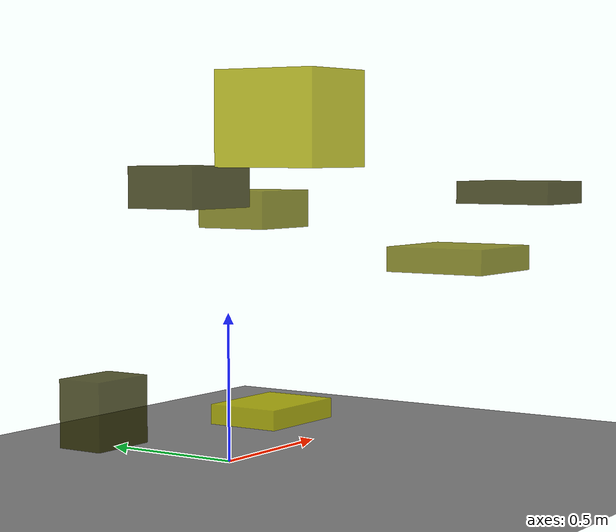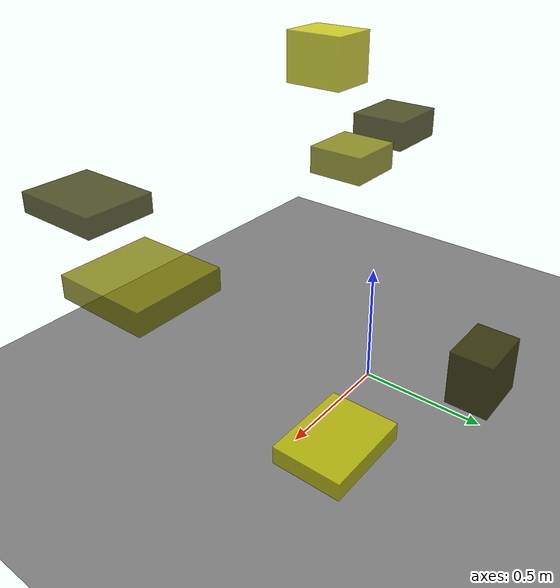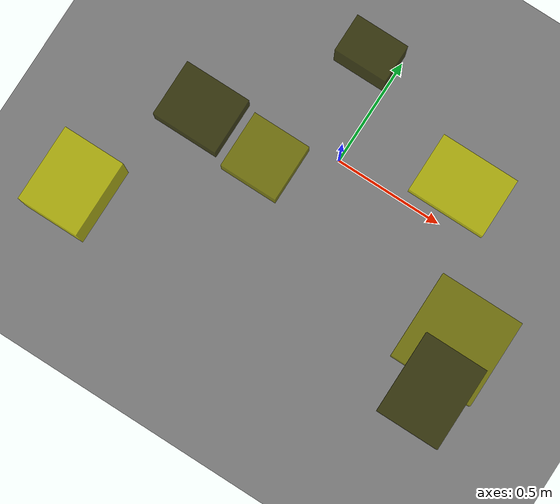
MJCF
<?xml version="1.0"?>
<mujoco model="obstacle_scene">
  <compiler angle="radian" coordinate="local"/>
  <option timestep="0.001" gravity="0 0 -9.81"/>

  <asset>
    <material name="obstacle_mat" rgba="0.8 0.8 0.0 0.8"/>
    <material name="ground_mat" rgba="0.5 0.5 0.5 1"/>
  </asset>

  <worldbody>
    <!-- Ground plane -->
    <geom name="ground" type="plane" size="3 3 0.1" material="ground_mat"/>

    <!-- Obstacles -->
    <body name="obstacle_0" pos="0.811686 -0.662944 0.894434">
      <geom name="obs_0" type="box" size="0.134972 0.175623 0.038602" rgba="0.2 0.2 0.0 0.8"/>
    </body>
    <body name="obstacle_1" pos="-0.202486 -0.253175 0.859090">
      <geom name="obs_1" type="box" size="0.123769 0.120901 0.057790" rgba="0.5 0.5 0.0 0.8"/>
    </body>
    <body name="obstacle_2" pos="0.501211 0.180703 0.089048">
      <geom name="obs_2" type="box" size="0.183703 0.139319 0.035799" rgba="0.8 0.8 0.0 0.8"/>
    </body>
    <body name="obstacle_3" pos="-0.501503 -0.234644 0.932301">
      <geom name="obs_3" type="box" size="0.139794 0.119388 0.062300" rgba="0.2 0.2 0.0 0.8"/>
    </body>
    <body name="obstacle_4" pos="0.797826 -0.430102 0.655211">
      <geom name="obs_4" type="box" size="0.182108 0.190171 0.044595" rgba="0.5 0.5 0.0 0.8"/>
    </body>
    <body name="obstacle_5" pos="-0.721300 -0.750158 1.124983">
      <geom name="obs_5" type="box" size="0.126434 0.157127 0.129947" rgba="0.8 0.8 0.0 0.8"/>
    </body>
    <body name="obstacle_6" pos="-0.128749 0.438774 0.149296">
      <geom name="obs_6" type="box" size="0.124710 0.088248 0.118270" rgba="0.2 0.2 0.0 0.8"/>
    </body>
  </worldbody>
</mujoco>
